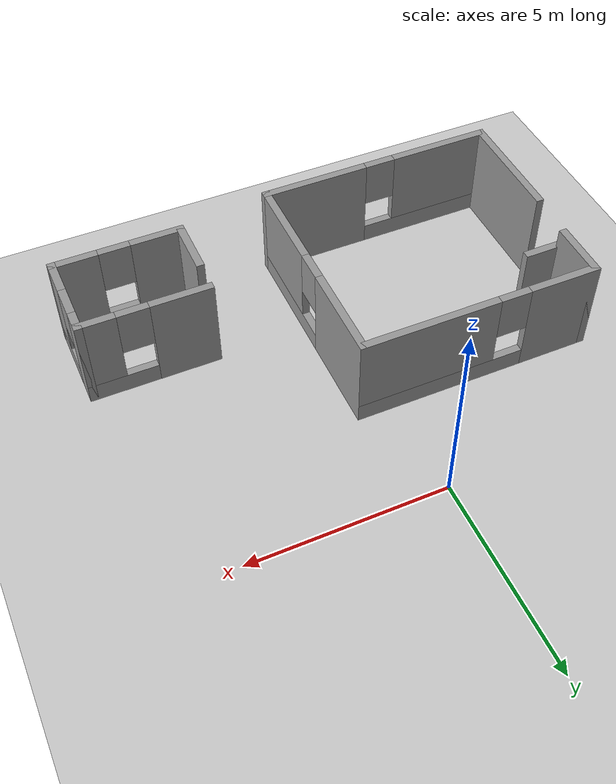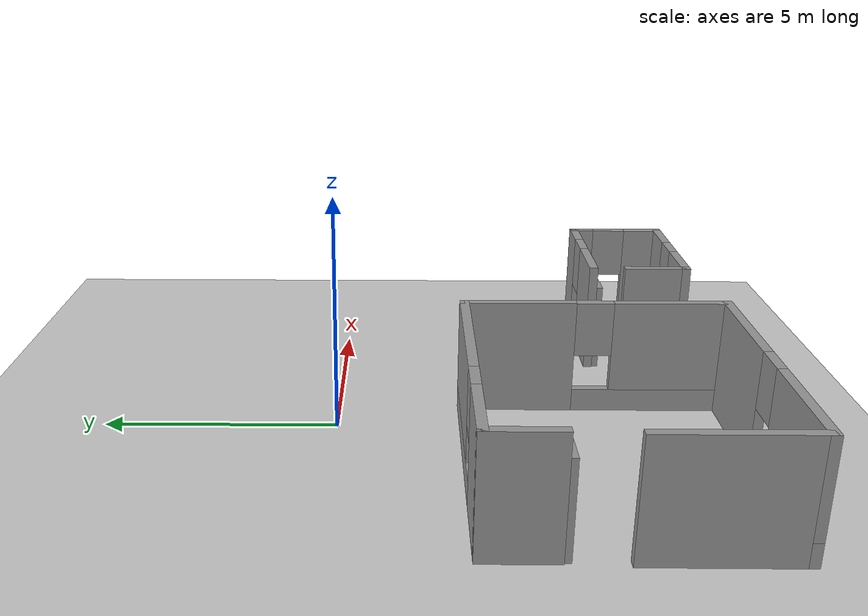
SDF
<sdf version="1.4">
 <world name="default">
  <light name="sun" type="directional">
   <pose>0 0 10 0 -0 0</pose>
   <diffuse>0.8 0.8 0.8 1</diffuse>
   <specular>0.2 0.2 0.2 1</specular>
   <attenuation>
    <range>1000</range>
    <constant>0.9</constant>
    <linear>0.01</linear>
    <quadratic>0.001</quadratic>
   </attenuation>
   <direction>-0.5 0.1 -0.9</direction>
  </light>
  <model name="ground_plane">
   <static>1</static>
   <link name="link">
    <collision name="collision">
     <geometry><plane><normal>0 0 1</normal><size>100 100</size></plane></geometry>
     <surface><friction><ode><mu>100</mu><mu2>50</mu2></ode></friction></surface>
    </collision>
    <visual name="visual">
     <cast_shadows>0</cast_shadows>
     <geometry><plane><normal>0 0 1</normal><size>100 100</size></plane></geometry>
     <material>
      <script><uri>file://media/materials/scripts/gazebo.material</uri><name>Gazebo/Grey</name></script>
     </material>
    </visual>
    <velocity_decay><linear>0</linear><angular>0</angular></velocity_decay>
   </link>
  </model>
  <physics type="ode">
   <max_step_size>0.01</max_step_size>
   <real_time_factor>1</real_time_factor>
   <real_time_update_rate>100</real_time_update_rate>
   <gravity>0 0 -9.8</gravity>
  </physics>
  <scene><ambient>0.4 0.4 0.4 1</ambient><background>0.7 0.7 0.7 1</background><shadows>1</shadows></scene>
  <model name="test1">
   <link name="Door_0">
    <collision name="Door_0_Collision">
     <geometry><box><size>1 0.2 2</size></box></geometry>
     <pose>0 0 1 0 -0 0</pose>
    </collision>
    <visual name="Door_0_Visual">
     <pose>0 0 1 0 -0 0</pose>
     <geometry><box><size>1 0.2 2</size></box></geometry>
     <material>
      <script><uri>file://media/materials/scripts/gazebo.material</uri><name>Gazebo/Grey</name></script>
     </material>
    </visual>
    <velocity_decay><linear>0</linear><angular>0</angular></velocity_decay>
    <pose>-3.19 -0.99 0 0 -0 0</pose>
   </link>
   <link name="Door_1">
    <collision name="Door_1_Collision">
     <geometry><box><size>1 0.2 2</size></box></geometry>
     <pose>0 0 1 0 -0 0</pose>
    </collision>
    <visual name="Door_1_Visual">
     <pose>0 0 1 0 -0 0</pose>
     <geometry><box><size>1 0.2 2</size></box></geometry>
     <material>
      <script><uri>file://media/materials/scripts/gazebo.material</uri><name>Gazebo/Grey</name></script>
     </material>
    </visual>
    <velocity_decay><linear>0</linear><angular>0</angular></velocity_decay>
    <pose>-11.6869 0.814156 0 0 -0 0</pose>
   </link>
   <link name="Wall_0">
    <pose>-2.025 -0.85 0 0 -0 0</pose>
    <visual name="Wall_0_Visual_0">
     <pose>-0.895 0 1.25 0 -0 0</pose>
     <geometry><box><size>1.58 0.2 2.5</size></box></geometry>
     <material>
      <script><uri>file://media/materials/scripts/gazebo.material</uri><name>Gazebo/Grey</name></script>
     </material>
    </visual>
    <collision name="Wall_0_Collision_0">
     <geometry><box><size>1.58 0.2 2.5</size></box></geometry>
     <pose>-0.895 0 1.25 0 -0 0</pose>
    </collision>
    <visual name="Wall_0_Visual_1">
     <pose>0.79 0 0.25 0 -0 0</pose>
     <geometry><box><size>1.79 0.2 0.5</size></box></geometry>
     <material>
      <script><uri>file://media/materials/scripts/gazebo.material</uri><name>Gazebo/Grey</name></script>
     </material>
    </visual>
    <collision name="Wall_0_Collision_1">
     <geometry><box><size>1.79 0.2 0.5</size></box></geometry>
     <pose>0.79 0 0.25 0 -0 0</pose>
    </collision>
    <visual name="Wall_0_Visual_2">
     <pose>1.19 0 1.5 0 -0 0</pose>
     <geometry><box><size>0.99 0.2 2</size></box></geometry>
     <material>
      <script><uri>file://media/materials/scripts/gazebo.material</uri><name>Gazebo/Grey</name></script>
     </material>
    </visual>
    <collision name="Wall_0_Collision_2">
     <geometry><box><size>0.99 0.2 2</size></box></geometry>
     <pose>1.19 0 1.5 0 -0 0</pose>
    </collision>
    <visual name="Wall_0_Visual_3">
     <pose>0.295 0 1.9 0 -0 0</pose>
     <geometry><box><size>0.8 0.2 1.2</size></box></geometry>
     <material>
      <script><uri>file://media/materials/scripts/gazebo.material</uri><name>Gazebo/Grey</name></script>
     </material>
    </visual>
    <collision name="Wall_0_Collision_3">
     <geometry><box><size>0.8 0.2 1.2</size></box></geometry>
     <pose>0.295 0 1.9 0 -0 0</pose>
    </collision>
    <velocity_decay><linear>0</linear><angular>0</angular></velocity_decay>
   </link>
   <link name="Wall_1">
    <pose>-0.44 -1.925 0 0 0 -1.5708</pose>
    <visual name="Wall_1_Visual_0">
     <pose>-0.885 0 1.25 0 -0 0</pose>
     <geometry><box><size>0.58 0.2 2.5</size></box></geometry>
     <material>
      <script><uri>file://media/materials/scripts/gazebo.material</uri><name>Gazebo/Grey</name></script>
     </material>
    </visual>
    <collision name="Wall_1_Collision_0">
     <geometry><box><size>0.58 0.2 2.5</size></box></geometry>
     <pose>-0.885 0 1.25 0 -0 0</pose>
    </collision>
    <visual name="Wall_1_Visual_1">
     <pose>0.29 0 0.25 0 -0 0</pose>
     <geometry><box><size>1.77 0.2 0.5</size></box></geometry>
     <material>
      <script><uri>file://media/materials/scripts/gazebo.material</uri><name>Gazebo/Grey</name></script>
     </material>
    </visual>
    <collision name="Wall_1_Collision_1">
     <geometry><box><size>1.77 0.2 0.5</size></box></geometry>
     <pose>0.29 0 0.25 0 -0 0</pose>
    </collision>
    <visual name="Wall_1_Visual_2">
     <pose>0.69 0 1.5 0 -0 0</pose>
     <geometry><box><size>0.97 0.2 2</size></box></geometry>
     <material>
      <script><uri>file://media/materials/scripts/gazebo.material</uri><name>Gazebo/Grey</name></script>
     </material>
    </visual>
    <collision name="Wall_1_Collision_2">
     <geometry><box><size>0.97 0.2 2</size></box></geometry>
     <pose>0.69 0 1.5 0 -0 0</pose>
    </collision>
    <visual name="Wall_1_Visual_3">
     <pose>-0.195 0 1.9 0 -0 0</pose>
     <geometry><box><size>0.8 0.2 1.2</size></box></geometry>
     <material>
      <script><uri>file://media/materials/scripts/gazebo.material</uri><name>Gazebo/Grey</name></script>
     </material>
    </visual>
    <collision name="Wall_1_Collision_3">
     <geometry><box><size>0.8 0.2 1.2</size></box></geometry>
     <pose>-0.195 0 1.9 0 -0 0</pose>
    </collision>
    <velocity_decay><linear>0</linear><angular>0</angular></velocity_decay>
   </link>
   <link name="Wall_2">
    <pose>-2.05 -3 0 0 -0 3.14159</pose>
    <visual name="Wall_2_Visual_0">
     <pose>-1.1 0 1.25 0 -0 0</pose>
     <geometry><box><size>1.22 0.2 2.5</size></box></geometry>
     <material>
      <script><uri>file://media/materials/scripts/gazebo.material</uri><name>Gazebo/Grey</name></script>
     </material>
    </visual>
    <collision name="Wall_2_Collision_0">
     <geometry><box><size>1.22 0.2 2.5</size></box></geometry>
     <pose>-1.1 0 1.25 0 -0 0</pose>
    </collision>
    <visual name="Wall_2_Visual_1">
     <pose>0.61 0 0.25 0 -0 0</pose>
     <geometry><box><size>2.2 0.2 0.5</size></box></geometry>
     <material>
      <script><uri>file://media/materials/scripts/gazebo.material</uri><name>Gazebo/Grey</name></script>
     </material>
    </visual>
    <collision name="Wall_2_Collision_1">
     <geometry><box><size>2.2 0.2 0.5</size></box></geometry>
     <pose>0.61 0 0.25 0 -0 0</pose>
    </collision>
    <visual name="Wall_2_Visual_2">
     <pose>1.01 0 1.5 0 -0 0</pose>
     <geometry><box><size>1.4 0.2 2</size></box></geometry>
     <material>
      <script><uri>file://media/materials/scripts/gazebo.material</uri><name>Gazebo/Grey</name></script>
     </material>
    </visual>
    <collision name="Wall_2_Collision_2">
     <geometry><box><size>1.4 0.2 2</size></box></geometry>
     <pose>1.01 0 1.5 0 -0 0</pose>
    </collision>
    <visual name="Wall_2_Visual_3">
     <pose>-0.09 0 1.9 0 -0 0</pose>
     <geometry><box><size>0.8 0.2 1.2</size></box></geometry>
     <material>
      <script><uri>file://media/materials/scripts/gazebo.material</uri><name>Gazebo/Grey</name></script>
     </material>
    </visual>
    <collision name="Wall_2_Collision_3">
     <geometry><box><size>0.8 0.2 1.2</size></box></geometry>
     <pose>-0.09 0 1.9 0 -0 0</pose>
    </collision>
    <velocity_decay><linear>0</linear><angular>0</angular></velocity_decay>
   </link>
   <link name="Wall_3">
    <collision name="Wall_3_Collision">
     <geometry><box><size>1.53 0.2 2.5</size></box></geometry>
     <pose>0 0 1.25 0 -0 0</pose>
    </collision>
    <visual name="Wall_3_Visual">
     <pose>0 0 1.25 0 -0 0</pose>
     <geometry><box><size>1.53 0.2 2.5</size></box></geometry>
     <material>
      <script><uri>file://media/materials/scripts/gazebo.material</uri><name>Gazebo/Grey</name></script>
     </material>
    </visual>
    <velocity_decay><linear>0</linear><angular>0</angular></velocity_decay>
    <pose>-3.66 -2.335 0 0 -0 1.5708</pose>
   </link>
   <link name="Wall_5">
    <collision name="Wall_5_Collision">
     <geometry><box><size>1.5455 0.2 2.5</size></box></geometry>
     <pose>0 0 1.25 0 -0 0</pose>
    </collision>
    <visual name="Wall_5_Visual">
     <pose>0 0 1.25 0 -0 0</pose>
     <geometry><box><size>1.5455 0.2 2.5</size></box></geometry>
     <material>
      <script><uri>file://media/materials/scripts/gazebo.material</uri><name>Gazebo/Grey</name></script>
     </material>
    </visual>
    <velocity_decay><linear>0</linear><angular>0</angular></velocity_decay>
    <pose>-12.1354 1.62491 0 0 -0 1.5708</pose>
   </link>
   <link name="Wall_6">
    <pose>-9.0994 2.29766 0 0 -0 0</pose>
    <visual name="Wall_6_Visual_0">
     <pose>-2.19925 0 1.25 0 -0 0</pose>
     <geometry><box><size>1.8735 0.2 2.5</size></box></geometry>
     <material>
      <script><uri>file://media/materials/scripts/gazebo.material</uri><name>Gazebo/Grey</name></script>
     </material>
    </visual>
    <collision name="Wall_6_Collision_0">
     <geometry><box><size>1.8735 0.2 2.5</size></box></geometry>
     <pose>-2.19925 0 1.25 0 -0 0</pose>
    </collision>
    <visual name="Wall_6_Visual_1">
     <pose>0.93675 0 0.25 0 -0 0</pose>
     <geometry><box><size>4.3985 0.2 0.5</size></box></geometry>
     <material>
      <script><uri>file://media/materials/scripts/gazebo.material</uri><name>Gazebo/Grey</name></script>
     </material>
    </visual>
    <collision name="Wall_6_Collision_1">
     <geometry><box><size>4.3985 0.2 0.5</size></box></geometry>
     <pose>0.93675 0 0.25 0 -0 0</pose>
    </collision>
    <visual name="Wall_6_Visual_2">
     <pose>1.33675 0 1.5 0 -0 0</pose>
     <geometry><box><size>3.5985 0.2 2</size></box></geometry>
     <material>
      <script><uri>file://media/materials/scripts/gazebo.material</uri><name>Gazebo/Grey</name></script>
     </material>
    </visual>
    <collision name="Wall_6_Collision_2">
     <geometry><box><size>3.5985 0.2 2</size></box></geometry>
     <pose>1.33675 0 1.5 0 -0 0</pose>
    </collision>
    <visual name="Wall_6_Visual_3">
     <pose>-0.8625 0 1.9 0 -0 0</pose>
     <geometry><box><size>0.8 0.2 1.2</size></box></geometry>
     <material>
      <script><uri>file://media/materials/scripts/gazebo.material</uri><name>Gazebo/Grey</name></script>
     </material>
    </visual>
    <collision name="Wall_6_Collision_3">
     <geometry><box><size>0.8 0.2 1.2</size></box></geometry>
     <pose>-0.8625 0 1.9 0 -0 0</pose>
    </collision>
    <velocity_decay><linear>0</linear><angular>0</angular></velocity_decay>
   </link>
   <link name="Wall_7">
    <pose>-6.0634 -0.514094 0 0 0 -1.5708</pose>
    <visual name="Wall_7_Visual_0">
     <pose>-1.6645 0 1.25 0 -0 0</pose>
     <geometry><box><size>2.4945 0.2 2.5</size></box></geometry>
     <material>
      <script><uri>file://media/materials/scripts/gazebo.material</uri><name>Gazebo/Grey</name></script>
     </material>
    </visual>
    <collision name="Wall_7_Collision_0">
     <geometry><box><size>2.4945 0.2 2.5</size></box></geometry>
     <pose>-1.6645 0 1.25 0 -0 0</pose>
    </collision>
    <visual name="Wall_7_Visual_1">
     <pose>1.24725 0 0.25 0 -0 0</pose>
     <geometry><box><size>3.329 0.2 0.5</size></box></geometry>
     <material>
      <script><uri>file://media/materials/scripts/gazebo.material</uri><name>Gazebo/Grey</name></script>
     </material>
    </visual>
    <collision name="Wall_7_Collision_1">
     <geometry><box><size>3.329 0.2 0.5</size></box></geometry>
     <pose>1.24725 0 0.25 0 -0 0</pose>
    </collision>
    <visual name="Wall_7_Visual_2">
     <pose>1.64725 0 1.5 0 -0 0</pose>
     <geometry><box><size>2.529 0.2 2</size></box></geometry>
     <material>
      <script><uri>file://media/materials/scripts/gazebo.material</uri><name>Gazebo/Grey</name></script>
     </material>
    </visual>
    <collision name="Wall_7_Collision_2">
     <geometry><box><size>2.529 0.2 2</size></box></geometry>
     <pose>1.64725 0 1.5 0 -0 0</pose>
    </collision>
    <visual name="Wall_7_Visual_3">
     <pose>-0.01725 0 1.9 0 -0 0</pose>
     <geometry><box><size>0.8 0.2 1.2</size></box></geometry>
     <material>
      <script><uri>file://media/materials/scripts/gazebo.material</uri><name>Gazebo/Grey</name></script>
     </material>
    </visual>
    <collision name="Wall_7_Collision_3">
     <geometry><box><size>0.8 0.2 1.2</size></box></geometry>
     <pose>-0.01725 0 1.9 0 -0 0</pose>
    </collision>
    <velocity_decay><linear>0</linear><angular>0</angular></velocity_decay>
   </link>
   <link name="Wall_8">
    <pose>-9.1339 -3.32584 0 0 -0 3.14159</pose>
    <visual name="Wall_8_Visual_0">
     <pose>-1.75075 0 1.25 0 -0 0</pose>
     <geometry><box><size>2.8395 0.2 2.5</size></box></geometry>
     <material>
      <script><uri>file://media/materials/scripts/gazebo.material</uri><name>Gazebo/Grey</name></script>
     </material>
    </visual>
    <collision name="Wall_8_Collision_0">
     <geometry><box><size>2.8395 0.2 2.5</size></box></geometry>
     <pose>-1.75075 0 1.25 0 -0 0</pose>
    </collision>
    <visual name="Wall_8_Visual_1">
     <pose>1.41975 0 0.25 0 -0 0</pose>
     <geometry><box><size>3.5015 0.2 0.5</size></box></geometry>
     <material>
      <script><uri>file://media/materials/scripts/gazebo.material</uri><name>Gazebo/Grey</name></script>
     </material>
    </visual>
    <collision name="Wall_8_Collision_1">
     <geometry><box><size>3.5015 0.2 0.5</size></box></geometry>
     <pose>1.41975 0 0.25 0 -0 0</pose>
    </collision>
    <visual name="Wall_8_Visual_2">
     <pose>1.81975 0 1.5 0 -0 0</pose>
     <geometry><box><size>2.7015 0.2 2</size></box></geometry>
     <material>
      <script><uri>file://media/materials/scripts/gazebo.material</uri><name>Gazebo/Grey</name></script>
     </material>
    </visual>
    <collision name="Wall_8_Collision_2">
     <geometry><box><size>2.7015 0.2 2</size></box></geometry>
     <pose>1.81975 0 1.5 0 -0 0</pose>
    </collision>
    <visual name="Wall_8_Visual_3">
     <pose>0.068999 0 1.9 0 -0 0</pose>
     <geometry><box><size>0.8 0.2 1.2</size></box></geometry>
     <material>
      <script><uri>file://media/materials/scripts/gazebo.material</uri><name>Gazebo/Grey</name></script>
     </material>
    </visual>
    <collision name="Wall_8_Collision_3">
     <geometry><box><size>0.8 0.2 1.2</size></box></geometry>
     <pose>0.068999 0 1.9 0 -0 0</pose>
    </collision>
    <velocity_decay><linear>0</linear><angular>0</angular></velocity_decay>
   </link>
   <link name="Wall_9">
    <collision name="Wall_9_Collision">
     <geometry><box><size>3.1325 0.2 2.5</size></box></geometry>
     <pose>0 0 1.25 0 -0 0</pose>
    </collision>
    <visual name="Wall_9_Visual">
     <pose>0 0 1.25 0 -0 0</pose>
     <geometry><box><size>3.1325 0.2 2.5</size></box></geometry>
     <material>
      <script><uri>file://media/materials/scripts/gazebo.material</uri><name>Gazebo/Grey</name></script>
     </material>
    </visual>
    <velocity_decay><linear>0</linear><angular>0</angular></velocity_decay>
    <pose>-12.2044 -1.85959 0 0 -0 1.5708</pose>
   </link>
   <static>1</static>
   <pose>7 -5 0 0 -0 0</pose>
  </model>
 </world>
</sdf>
